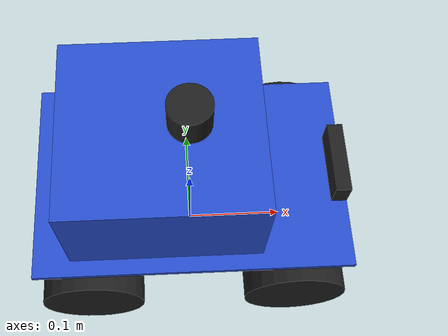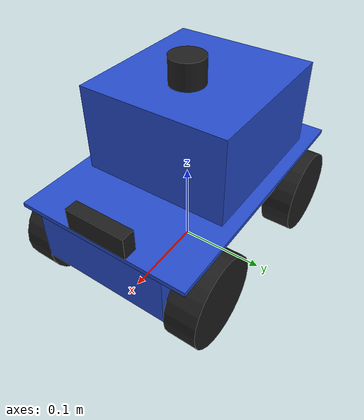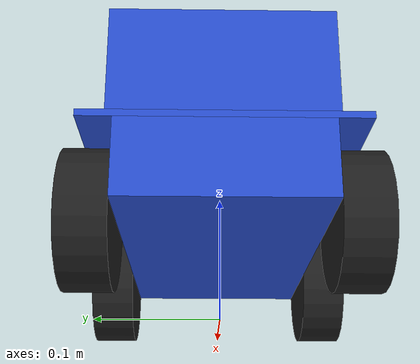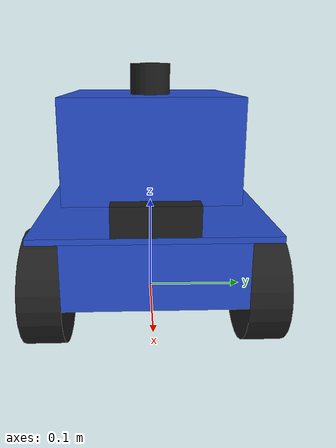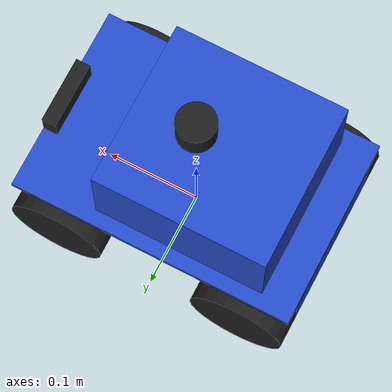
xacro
<?xml version="1.0"?>
<robot xmlns:xacro="http://www.ros.org/wiki/xacro">

    <!-- BASE -->
    <link name="base_footprint">
    </link>

    <joint name="base_joint" type="fixed">
        <parent link="base_footprint"/>
        <child link="base_link" />
        <origin xyz="0 0 0.05" />
    </joint>

    <!-- LINK -->
    <link name="base_link">
        <visual>
            <origin xyz="0 0 0.028" rpy="0 0 0" />
            <geometry>
                <box size="0.3 0.15 0.056" />
            </geometry>
            <material name="blue" />
        </visual>
        <xacro:box_inertia m="1.0" l="0.3" w="0.15" h="0.056"
                           xyz="0 0 0.028" rpy="0 0 0" />
     </link>

    <link name="mid_link">
        <visual>
            <origin xyz="0 0 0.0025" rpy="0 0 0" />
            <geometry>
                <box size="0.3 0.2 0.005" />
            </geometry>
            <material name="blue" />
        </visual>
        <xacro:box_inertia m="0.3" l="0.3" w="0.2" h="0.005"
                           xyz="0 0 0.0025" rpy="0 0 0" />
    </link>

    <link name="top_link">
        <visual>
            <origin xyz="0 0 0.05" rpy="0 0 0" />
            <geometry>
                <box size="0.18 0.17 0.1" />
            </geometry>
            <material name="blue" />
        </visual>
        <xacro:box_inertia m="2.0" l="0.18" w="0.17" h="0.1"
                           xyz="0 0 0.05" rpy="0 0 0" />
    </link>

    <link name="lidar_link">
        <visual>
            <origin xyz="0 0 0" rpy="0 0 0" />
            <geometry>
                <cylinder radius="0.02" length="0.03" />
            </geometry>
            <material name="black" />
        </visual>
        <xacro:cylinder_inertia m="0.2" r="0.02" h="0.03"
                                xyz="0 0 0" rpy="0 0 0" />
    </link>

    <xacro:macro name="wheel_link" params="prefix">
        <link name="${prefix}_wheel_link">
            <visual>
                <origin xyz="0 0 0" rpy="${pi / 2.0} 0 0" />
                <geometry>
                    <cylinder radius="0.05" length="0.035" />
                </geometry>
                <material name="black" />
            </visual>
            <xacro:cylinder_inertia m="0.3" r="0.05" h="0.035"
                                    xyz="0 0 0" rpy="${pi / 2.0} 0 0" />
        </link>
    </xacro:macro>

    <xacro:wheel_link prefix="rr" />
    <xacro:wheel_link prefix="rl" />
    <xacro:wheel_link prefix="fr" />
    <xacro:wheel_link prefix="fl" />

    <link name="camera_link">
        <visual>
            <origin xyz="0 0 0.0125" rpy="0 0 0" />
            <geometry>
                <box size="0.015 0.07 0.025" />
            </geometry>
            <material name="black" />
        </visual>
        <xacro:box_inertia m="0.05" l="0.015" w="0.07" h="0.025"
                           xyz="0 0 0.0125" rpy="0 0 0" />
    </link>

    <!-- JOINT -->
    <joint name="base_mid" type="fixed">
        <parent link="base_link" />
        <child link="mid_link" />
        <origin xyz="0 0 0.056" rpy="0 0 0" />
    </joint>

    <joint name="mid_top" type="fixed">
        <parent link="mid_link" />
        <child link="top_link" />
        <origin xyz="-0.025 0 0.005" rpy="0 0 0" />
    </joint>

    <joint name="top_lidar" type="continuous">
        <parent link="top_link" />
        <child link="lidar_link" />
        <origin xyz="0.025 0 0.115" rpy="0 0 0" />
        <axis xyz="0 0 -1" />
    </joint>

    <joint name="rr_wheel" type="continuous">
        <parent link="base_link" />
        <child link="rr_wheel_link" />
        <origin xyz="-0.1 -0.0925 0" rpy="0 0 0" />
        <axis xyz="0 1 0" />
    </joint>

    <joint name="rl_wheel" type="continuous">
        <parent link="base_link" />
        <child link="rl_wheel_link" />
        <origin xyz="-0.1 0.0925 0" rpy="0 0 0" />
        <axis xyz="0 1 0" />
    </joint>

    <joint name="fr_wheel" type="continuous">
        <parent link="base_link" />
        <child link="fr_wheel_link" />
        <origin xyz="0.1 -0.0925 0" rpy="0 0 0" />
        <axis xyz="0 1 0" />
    </joint>

    <joint name="fl_wheel" type="continuous">
        <parent link="base_link" />
        <child link="fl_wheel_link" />
        <origin xyz="0.1 0.0925 0" rpy="0 0 0" />
        <axis xyz="0 1 0" />
    </joint>

    <joint name="mid_camera" type="fixed">
        <parent link="mid_link" />
        <child link="camera_link" />
        <origin xyz="0.1425 0 0.005" rpy="0 0 0" />
    </joint>

</robot>
